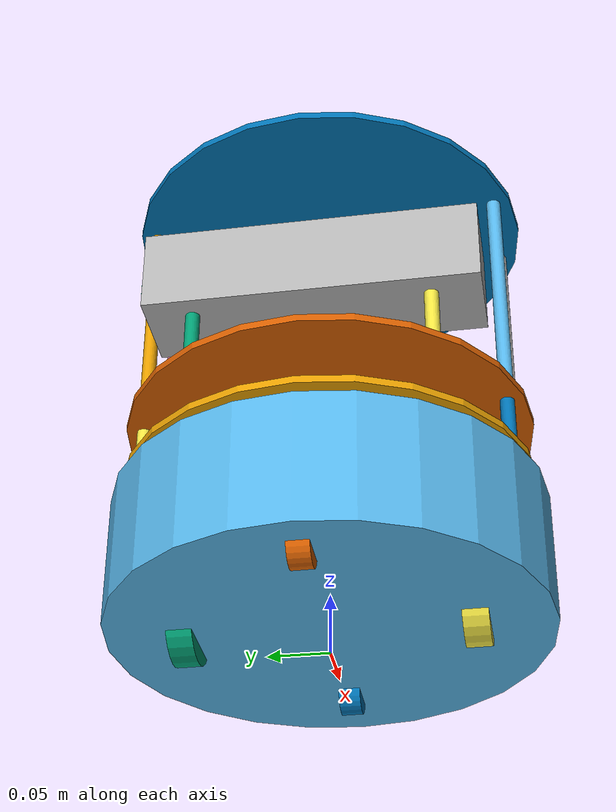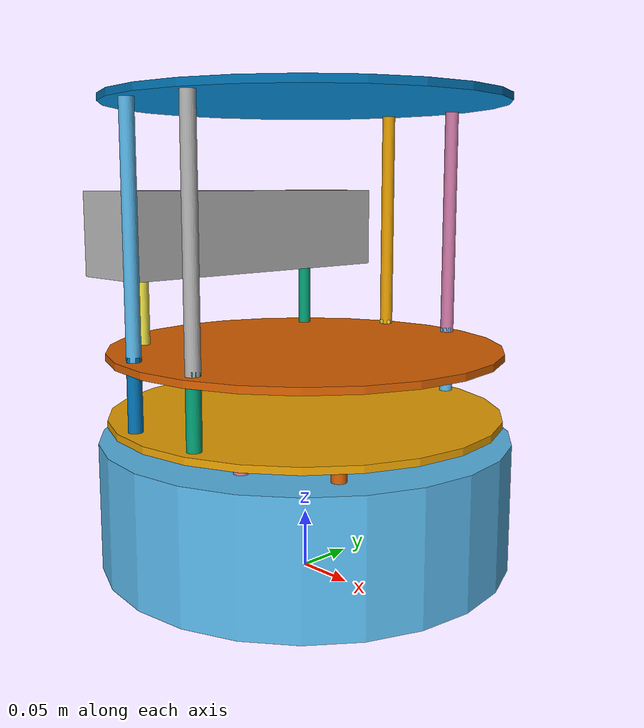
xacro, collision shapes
<?xml version='1.0' encoding='utf-8'?>\n
<!-- |    This document was autogenerated by xacro from /opt/ros/kinetic/share/turtlebot_description/robots/kobuki_hexagons_asus_xtion_pro.urdf.xacro | -->
<!-- |    EDITING THIS FILE BY HAND IS NOT RECOMMENDED                                 | -->
<!--
    - Base      : kobuki
    - Stacks    : hexagons
    - 3d Sensor : kinect
-->
<robot name="turtlebot" xmlns:xacro="http://ros.org/wiki/xacro">
  <!--
    These properties must be observed by any machine
    that wants to be defined as a turtlebot. Refer
    to the REP for more details.

    http://www.ros.org/reps/rep-0119.html
   -->
  <!--
    These properties must be observed by any machine
    that wants to be defined as a turtlebot. Refer
    to the REP for more details.

    http://www.ros.org/reps/rep-0119.html
   -->
  <link name="base_footprint" />
  <joint name="base_joint" type="fixed">
    <origin rpy="0 0 0" xyz="0 0 0.0102" />
    <parent link="base_footprint" />
    <child link="base_link" />
  </joint>
  <link name="base_link">
    <visual>
      <geometry>
        <!-- new mesh -->
        <mesh filename="package://unity-turtle/kobuki_description/meshes/main_body.dae" />
      </geometry>
      <origin rpy="0 0 0" xyz="0.001 0 0.05199" />
    </visual>
    <collision name="base">
      <geometry>
        <cylinder length="0.10938" radius="0.178" />
      </geometry>
      <origin rpy="0 0 0" xyz="0.0 0 0.05949" />
    </collision>
    <inertial>
      <!-- COM experimentally determined -->
      <origin xyz="0.01 0 0" />
      <mass value="2.4" />
      <!-- 2.4/2.6 kg for small/big battery pack -->
      <inertia ixx="0.019995" ixy="0.0" ixz="0.0" iyy="0.019995" iyz="0.0" izz="0.03675" />
    </inertial>
  </link>
  <joint name="wheel_left_joint" type="continuous">
    <parent link="base_link" />
    <child link="wheel_left_link" />
    <origin rpy="-1.57079632679 0 0" xyz="0.00 0.115 0.0250" />
    <axis xyz="0 0 1" />
  </joint>
  <link name="wheel_left_link">
    <visual>
      <geometry>
        <mesh filename="package://unity-turtle/kobuki_description/meshes/wheel.dae" />
      </geometry>
      <origin rpy="0 0 0" xyz="0 0 0" />
    </visual>
    <collision>
      <geometry>
        <cylinder length="0.0206" radius="0.0352" />
      </geometry>
      <origin rpy="0 0 0" xyz="0 0 0" />
    </collision>
    <inertial>
      <mass value="0.01" />
      <origin xyz="0 0 0" />
      <inertia ixx="0.001" ixy="0.0" ixz="0.0" iyy="0.001" iyz="0.0" izz="0.001" />
    </inertial>
  </link>
  <joint name="wheel_right_joint" type="continuous">
    <parent link="base_link" />
    <child link="wheel_right_link" />
    <origin rpy="-1.57079632679 0 0" xyz="0.00 -0.115 0.0250" />
    <axis xyz="0 0 1" />
  </joint>
  <link name="wheel_right_link">
    <visual>
      <geometry>
        <mesh filename="package://unity-turtle/kobuki_description/meshes/wheel.dae" />
      </geometry>
      <origin rpy="0 0 0" xyz="0 0 0" />
    </visual>
    <collision>
      <geometry>
        <cylinder length="0.0206" radius="0.0350" />
      </geometry>
      <origin rpy="0 0 0" xyz="0 0 0" />
    </collision>
    <inertial>
      <mass value="0.01" />
      <origin xyz="0 0 0" />
      <inertia ixx="0.001" ixy="0.0" ixz="0.0" iyy="0.001" iyz="0.0" izz="0.001" />
    </inertial>
  </link>
  <joint name="caster_front_joint" type="fixed">
    <parent link="base_link" />
    <child link="caster_front_link" />
    <origin rpy="-1.57079632679 0 0" xyz="0.115 0.0 0.007" />
  </joint>
  <link name="caster_front_link">
    <collision>
      <geometry>
        <cylinder length="0.0176" radius="0.017" />
      </geometry>
      <origin rpy="0 0 0" xyz="0 0 0" />
    </collision>
    <inertial>
      <mass value="0.01" />
      <origin xyz="0 0 0" />
      <inertia ixx="0.001" ixy="0.0" ixz="0.0" iyy="0.001" iyz="0.0" izz="0.001" />
    </inertial>
  </link>
  <joint name="caster_back_joint" type="fixed">
    <parent link="base_link" />
    <child link="caster_back_link" />
    <origin rpy="-1.57079632679 0 0" xyz="-0.135 0.0 0.009" />
  </joint>
  <link name="caster_back_link">
    <collision>
      <geometry>
        <cylinder length="0.0176" radius="0.017" />
      </geometry>
      <origin rpy="0 0 0" xyz="0 0 0" />
    </collision>
    <inertial>
      <mass value="0.01" />
      <origin xyz="0 0 0" />
      <inertia ixx="0.001" ixy="0.0" ixz="0.0" iyy="0.001" iyz="0.0" izz="0.001" />
    </inertial>
  </link>
  <!-- Kobuki's sensors -->
  <joint name="gyro_joint" type="fixed">
    <axis xyz="0 1 0" />
    <origin rpy="0 0 0" xyz="0.056 0.062 0.0202" />
    <parent link="base_link" />
    <child link="gyro_link" />
  </joint>
  <link name="gyro_link">
    <inertial>
      <mass value="0.001" />
      <origin rpy="0 0 0" xyz="0 0 0" />
      <inertia ixx="0.0001" ixy="0" ixz="0" iyy="0.000001" iyz="0" izz="0.0001" />
    </inertial>
  </link>
  <joint name="cliff_sensor_left_joint" type="fixed">
    <origin rpy="0 1.57079632679 0" xyz="0.08734 0.13601 0.0214" />
    <parent link="base_link" />
    <child link="cliff_sensor_left_link" />
  </joint>
  <link name="cliff_sensor_left_link">
    <inertial>
      <mass value="0.0001" />
      <origin xyz="0 0 0" />
      <inertia ixx="0.0001" ixy="0.0" ixz="0.0" iyy="0.0001" iyz="0.0" izz="0.0001" />
    </inertial>
  </link>
  <joint name="cliff_sensor_right_joint" type="fixed">
    <origin rpy="0 1.57079632679 0" xyz="0.085 -0.13601 0.0214" />
    <parent link="base_link" />
    <child link="cliff_sensor_right_link" />
  </joint>
  <link name="cliff_sensor_right_link">
    <inertial>
      <mass value="0.0001" />
      <origin xyz="0 0 0" />
      <inertia ixx="0.0001" ixy="0.0" ixz="0.0" iyy="0.0001" iyz="0.0" izz="0.0001" />
    </inertial>
  </link>
  <joint name="cliff_sensor_front_joint" type="fixed">
    <origin rpy="0 1.57079632679 0" xyz="0.156 0.00 0.0214" />
    <parent link="base_link" />
    <child link="cliff_sensor_front_link" />
  </joint>
  <link name="cliff_sensor_front_link">
    <inertial>
      <mass value="0.0001" />
      <origin xyz="0 0 0" />
      <inertia ixx="0.0001" ixy="0.0" ixz="0.0" iyy="0.0001" iyz="0.0" izz="0.0001" />
    </inertial>
  </link>
  <gazebo reference="wheel_left_link">
    <mu1>1.0</mu1>
    <mu2>1.0</mu2>
    <kp>1000000.0</kp>
    <kd>100.0</kd>
    <minDepth>0.001</minDepth>
    <maxVel>1.0</maxVel>
  </gazebo>
  <gazebo reference="wheel_right_link">
    <mu1>1.0</mu1>
    <mu2>1.0</mu2>
    <kp>1000000.0</kp>
    <kd>100.0</kd>
    <minDepth>0.001</minDepth>
    <maxVel>1.0</maxVel>
  </gazebo>
  <gazebo reference="caster_front_link">
    <mu1>0.0</mu1>
    <mu2>0.0</mu2>
    <kp>1000000.0</kp>
    <kd>100.0</kd>
    <minDepth>0.001</minDepth>
    <maxVel>1.0</maxVel>
  </gazebo>
  <gazebo reference="caster_back_link">
    <mu1>0.0</mu1>
    <mu2>0.0</mu2>
    <kp>1000000.0</kp>
    <kd>100.0</kd>
    <minDepth>0.001</minDepth>
    <maxVel>1.0</maxVel>
  </gazebo>
  <gazebo reference="base_link">
    <mu1>0.3</mu1>
    <mu2>0.3</mu2>
    <sensor name="bumpers" type="contact">
      <always_on>1</always_on>
      <update_rate>50.0</update_rate>
      <visualize>true</visualize>
      <contact>
        <collision>base_footprint_fixed_joint_lump__base_collision</collision>
      </contact>
    </sensor>
  </gazebo>
  <gazebo reference="cliff_sensor_left_link">
    <sensor name="cliff_sensor_left" type="ray">
      <always_on>true</always_on>
      <update_rate>50</update_rate>
      <visualize>true</visualize>
      <ray>
        <scan>
          <horizontal>
            <samples>50</samples>
            <resolution>1.0</resolution>
            <min_angle>-0.0436</min_angle>
            <!-- -2.5 degree -->
            <max_angle>0.0436</max_angle>
            <!-- 2.5 degree -->
          </horizontal>
          <!--            Can't use vertical rays until this bug is resolved: -->
          <!--            https://bitbucket.org/osrf/gazebo/issue/509/vertical-sensor-doesnt-works -->
        </scan>
        <range>
          <min>0.01</min>
          <max>0.15</max>
          <resolution>1.0</resolution>
        </range>
      </ray>
    </sensor>
  </gazebo>
  <gazebo reference="cliff_sensor_right_link">
    <sensor name="cliff_sensor_right" type="ray">
      <always_on>true</always_on>
      <update_rate>50</update_rate>
      <visualize>true</visualize>
      <ray>
        <scan>
          <horizontal>
            <samples>50</samples>
            <resolution>1.0</resolution>
            <min_angle>-0.0436</min_angle>
            <!-- -2.5 degree -->
            <max_angle>0.0436</max_angle>
            <!-- 2.5 degree -->
          </horizontal>
          <!--            Can't use vertical rays until this bug is resolved: -->
          <!--            https://bitbucket.org/osrf/gazebo/issue/509/vertical-sensor-doesnt-works -->
        </scan>
        <range>
          <min>0.01</min>
          <max>0.15</max>
          <resolution>1.0</resolution>
        </range>
      </ray>
    </sensor>
  </gazebo>
  <gazebo reference="cliff_sensor_front_link">
    <sensor name="cliff_sensor_front" type="ray">
      <always_on>true</always_on>
      <update_rate>50</update_rate>
      <visualize>true</visualize>
      <ray>
        <scan>
          <horizontal>
            <samples>50</samples>
            <resolution>1.0</resolution>
            <min_angle>-0.0436</min_angle>
            <!-- -2.5 degree -->
            <max_angle>0.0436</max_angle>
            <!-- 2.5 degree -->
          </horizontal>
          <!-- \t          Can't use vertical rays until this bug is resolved: -->
          <!--            https://bitbucket.org/osrf/gazebo/issue/509/vertical-sensor-doesnt-works -->
        </scan>
        <range>
          <min>0.01</min>
          <max>0.15</max>
          <resolution>1.0</resolution>
        </range>
      </ray>
    </sensor>
  </gazebo>
  <gazebo reference="gyro_link">
    <sensor name="imu" type="imu">
      <always_on>true</always_on>
      <update_rate>50</update_rate>
      <visualize>false</visualize>
      <imu>
        <noise>
          <type>gaussian</type>
          <rate>
            <mean>0.0</mean>
            <stddev>1.96e-06</stddev>
            <!-- 0.25 x 0.25 (deg/s) -->
            <bias_mean>0.0</bias_mean>
            <bias_stddev>0.0</bias_stddev>
          </rate>
          <accel>
            <!-- not used in the plugin and real robot, hence using tutorial values -->
            <mean>0.0</mean>
            <stddev>1.7e-2</stddev>
            <bias_mean>0.1</bias_mean>
            <bias_stddev>0.001</bias_stddev>
          </accel>
        </noise>
      </imu>
    </sensor>
  </gazebo>
  <gazebo>
    <plugin filename="libgazebo_ros_kobuki.so" name="kobuki_controller">
      <publish_tf>1</publish_tf>
      <left_wheel_joint_name>wheel_left_joint</left_wheel_joint_name>
      <right_wheel_joint_name>wheel_right_joint</right_wheel_joint_name>
      <wheel_separation>.230</wheel_separation>
      <wheel_diameter>0.070</wheel_diameter>
      <torque>1.0</torque>
      <velocity_command_timeout>0.6</velocity_command_timeout>
      <cliff_sensor_left_name>cliff_sensor_left</cliff_sensor_left_name>
      <cliff_sensor_center_name>cliff_sensor_front</cliff_sensor_center_name>
      <cliff_sensor_right_name>cliff_sensor_right</cliff_sensor_right_name>
      <cliff_detection_threshold>0.04</cliff_detection_threshold>
      <bumper_name>bumpers</bumper_name>
      <imu_name>imu</imu_name>
    </plugin>
  </gazebo>
  <joint name="pole_bottom_0_joint" type="fixed">
    <origin rpy="0 0 0" xyz="0.12 0.082 0.1028" />
    <parent link="base_link" />
    <child link="pole_bottom_0_link" />
  </joint>
  <link name="pole_bottom_0_link">
    <visual>
      <origin rpy="0 0 0" xyz="0 0 0" />
      <geometry>
        <mesh filename="package://unity-turtle/turtlebot_description/meshes/stacks/hexagons/pole_bottom.dae" />
      </geometry>
    </visual>
    <collision>
      <origin rpy="0 0 0" xyz="0 0 0" />
      <geometry>
        <cylinder length="0.0492" radius="0.006" />
      </geometry>
    </collision>
    <inertial>
      <mass value="0.008" />
      <origin rpy="0 0 0" xyz="0 0 0" />
      <inertia ixx="0.000001686" ixy="0.0" ixz="0.0" iyy="0.000001686" iyz="0.0" izz="0.000000144" />
    </inertial>
  </link>
  <joint name="pole_bottom_1_joint" type="fixed">
    <origin rpy="0 0 0" xyz="0.055 0.12 0.1028" />
    <parent link="base_link" />
    <child link="pole_bottom_1_link" />
  </joint>
  <link name="pole_bottom_1_link">
    <visual>
      <origin rpy="0 0 0" xyz="0 0 0" />
      <geometry>
        <mesh filename="package://unity-turtle/turtlebot_description/meshes/stacks/hexagons/pole_bottom.dae" />
      </geometry>
    </visual>
    <collision>
      <origin rpy="0 0 0" xyz="0 0 0" />
      <geometry>
        <cylinder length="0.0492" radius="0.006" />
      </geometry>
    </collision>
    <inertial>
      <mass value="0.008" />
      <origin rpy="0 0 0" xyz="0 0 0" />
      <inertia ixx="0.000001686" ixy="0.0" ixz="0.0" iyy="0.000001686" iyz="0.0" izz="0.000000144" />
    </inertial>
  </link>
  <joint name="pole_bottom_2_joint" type="fixed">
    <origin rpy="0 0 0" xyz="-0.055 0.12 0.1028" />
    <parent link="base_link" />
    <child link="pole_bottom_2_link" />
  </joint>
  <link name="pole_bottom_2_link">
    <visual>
      <origin rpy="0 0 0" xyz="0 0 0" />
      <geometry>
        <mesh filename="package://unity-turtle/turtlebot_description/meshes/stacks/hexagons/pole_bottom.dae" />
      </geometry>
    </visual>
    <collision>
      <origin rpy="0 0 0" xyz="0 0 0" />
      <geometry>
        <cylinder length="0.0492" radius="0.006" />
      </geometry>
    </collision>
    <inertial>
      <mass value="0.008" />
      <origin rpy="0 0 0" xyz="0 0 0" />
      <inertia ixx="0.000001686" ixy="0.0" ixz="0.0" iyy="0.000001686" iyz="0.0" izz="0.000000144" />
    </inertial>
  </link>
  <joint name="pole_bottom_3_joint" type="fixed">
    <origin rpy="0 0 0" xyz="0.12 -0.082 0.1028" />
    <parent link="base_link" />
    <child link="pole_bottom_3_link" />
  </joint>
  <link name="pole_bottom_3_link">
    <visual>
      <origin rpy="0 0 0" xyz="0 0 0" />
      <geometry>
        <mesh filename="package://unity-turtle/turtlebot_description/meshes/stacks/hexagons/pole_bottom.dae" />
      </geometry>
    </visual>
    <collision>
      <origin rpy="0 0 0" xyz="0 0 0" />
      <geometry>
        <cylinder length="0.0492" radius="0.006" />
      </geometry>
    </collision>
    <inertial>
      <mass value="0.008" />
      <origin rpy="0 0 0" xyz="0 0 0" />
      <inertia ixx="0.000001686" ixy="0.0" ixz="0.0" iyy="0.000001686" iyz="0.0" izz="0.000000144" />
    </inertial>
  </link>
  <joint name="pole_bottom_4_joint" type="fixed">
    <origin rpy="0 0 0" xyz="0.055 -0.12 0.1028" />
    <parent link="base_link" />
    <child link="pole_bottom_4_link" />
  </joint>
  <link name="pole_bottom_4_link">
    <visual>
      <origin rpy="0 0 0" xyz="0 0 0" />
      <geometry>
        <mesh filename="package://unity-turtle/turtlebot_description/meshes/stacks/hexagons/pole_bottom.dae" />
      </geometry>
    </visual>
    <collision>
      <origin rpy="0 0 0" xyz="0 0 0" />
      <geometry>
        <cylinder length="0.0492" radius="0.006" />
      </geometry>
    </collision>
    <inertial>
      <mass value="0.008" />
      <origin rpy="0 0 0" xyz="0 0 0" />
      <inertia ixx="0.000001686" ixy="0.0" ixz="0.0" iyy="0.000001686" iyz="0.0" izz="0.000000144" />
    </inertial>
  </link>
  <joint name="pole_bottom_5_joint" type="fixed">
    <origin rpy="0 0 0" xyz="-0.055 -0.12 0.1028" />
    <parent link="base_link" />
    <child link="pole_bottom_5_link" />
  </joint>
  <link name="pole_bottom_5_link">
    <visual>
      <origin rpy="0 0 0" xyz="0 0 0" />
      <geometry>
        <mesh filename="package://unity-turtle/turtlebot_description/meshes/stacks/hexagons/pole_bottom.dae" />
      </geometry>
    </visual>
    <collision>
      <origin rpy="0 0 0" xyz="0 0 0" />
      <geometry>
        <cylinder length="0.0492" radius="0.006" />
      </geometry>
    </collision>
    <inertial>
      <mass value="0.008" />
      <origin rpy="0 0 0" xyz="0 0 0" />
      <inertia ixx="0.000001686" ixy="0.0" ixz="0.0" iyy="0.000001686" iyz="0.0" izz="0.000000144" />
    </inertial>
  </link>
  <joint name="plate_bottom_joint" type="fixed">
    <origin rpy="0 0 0" xyz="0.02364 0.0 0.1306" />
    <parent link="base_link" />
    <child link="plate_bottom_link" />
  </joint>
  <link name="plate_bottom_link">
    <visual>
      <origin rpy="0 0 0" xyz="0 0 0" />
      <geometry>
        <mesh filename="package://unity-turtle/turtlebot_description/meshes/stacks/hexagons/plate_bottom.dae" />
      </geometry>
    </visual>
    <collision>
      <origin rpy="0 0 0" xyz="-0.02364 0 0" />
      <geometry>
        <cylinder length="0.006" radius="0.170" />
      </geometry>
    </collision>
    <inertial>
      <mass value="0.520" />
      <origin xyz="0 0 0" />
      <inertia ixx="0.003328" ixy="0.0" ixz="0.0" iyy="0.003328" iyz="0.0" izz="0.006656" />
    </inertial>
  </link>
  <joint name="pole_middle_0_joint" type="fixed">
    <origin rpy="0 0 0" xyz="0.0381 0.1505 0.164" />
    <parent link="base_link" />
    <child link="pole_middle_0_link" />
  </joint>
  <link name="pole_middle_0_link">
    <visual>
      <origin rpy="0 3.14159265359 0" xyz="0 0 0" />
      <geometry>
        <mesh filename="package://unity-turtle/turtlebot_description/meshes/stacks/hexagons/pole_middle.dae" />
      </geometry>
    </visual>
    <collision>
      <origin rpy="0 0 0" xyz="0 0 0" />
      <geometry>
        <cylinder length="0.0608" radius="0.006" />
      </geometry>
    </collision>
    <inertial>
      <mass value="0.012" />
      <origin xyz="0 0 0" />
      <inertia ixx="0.000003805" ixy="0.0" ixz="0.0" iyy="0.000003805" iyz="0.0" izz="0.000000216" />
    </inertial>
  </link>
  <joint name="pole_middle_1_joint" type="fixed">
    <origin rpy="0 0 0" xyz="0.0381 -0.1505 0.164" />
    <parent link="base_link" />
    <child link="pole_middle_1_link" />
  </joint>
  <link name="pole_middle_1_link">
    <visual>
      <origin rpy="0 3.14159265359 0" xyz="0 0 0" />
      <geometry>
        <mesh filename="package://unity-turtle/turtlebot_description/meshes/stacks/hexagons/pole_middle.dae" />
      </geometry>
    </visual>
    <collision>
      <origin rpy="0 0 0" xyz="0 0 0" />
      <geometry>
        <cylinder length="0.0608" radius="0.006" />
      </geometry>
    </collision>
    <inertial>
      <mass value="0.012" />
      <origin xyz="0 0 0" />
      <inertia ixx="0.000003805" ixy="0.0" ixz="0.0" iyy="0.000003805" iyz="0.0" izz="0.000000216" />
    </inertial>
  </link>
  <joint name="pole_middle_2_joint" type="fixed">
    <origin rpy="0 0 0" xyz="-0.0381 0.1505 0.164" />
    <parent link="base_link" />
    <child link="pole_middle_2_link" />
  </joint>
  <link name="pole_middle_2_link">
    <visual>
      <origin rpy="0 3.14159265359 0" xyz="0 0 0" />
      <geometry>
        <mesh filename="package://unity-turtle/turtlebot_description/meshes/stacks/hexagons/pole_middle.dae" />
      </geometry>
    </visual>
    <collision>
      <origin rpy="0 0 0" xyz="0 0 0" />
      <geometry>
        <cylinder length="0.0608" radius="0.006" />
      </geometry>
    </collision>
    <inertial>
      <mass value="0.012" />
      <origin xyz="0 0 0" />
      <inertia ixx="0.000003805" ixy="0.0" ixz="0.0" iyy="0.000003805" iyz="0.0" izz="0.000000216" />
    </inertial>
  </link>
  <joint name="pole_middle_3_joint" type="fixed">
    <origin rpy="0 0 0" xyz="-0.0381 -0.1505 0.164" />
    <parent link="base_link" />
    <child link="pole_middle_3_link" />
  </joint>
  <link name="pole_middle_3_link">
    <visual>
      <origin rpy="0 3.14159265359 0" xyz="0 0 0" />
      <geometry>
        <mesh filename="package://unity-turtle/turtlebot_description/meshes/stacks/hexagons/pole_middle.dae" />
      </geometry>
    </visual>
    <collision>
      <origin rpy="0 0 0" xyz="0 0 0" />
      <geometry>
        <cylinder length="0.0608" radius="0.006" />
      </geometry>
    </collision>
    <inertial>
      <mass value="0.012" />
      <origin xyz="0 0 0" />
      <inertia ixx="0.000003805" ixy="0.0" ixz="0.0" iyy="0.000003805" iyz="0.0" izz="0.000000216" />
    </inertial>
  </link>
  <joint name="plate_middle_joint" type="fixed">
    <origin rpy="0 0 0" xyz="-0.01364 0.0 0.1874" />
    <parent link="base_link" />
    <child link="plate_middle_link" />
  </joint>
  <link name="plate_middle_link">
    <visual>
      <origin rpy="0 0 0" xyz="0 0 0" />
      <geometry>
        <mesh filename="package://unity-turtle/turtlebot_description/meshes/stacks/hexagons/plate_middle.dae" />
      </geometry>
    </visual>
    <collision>
      <origin rpy="0 0 0" xyz="0.01364 0.0 0.0" />
      <geometry>
        <cylinder length="0.006" radius="0.170" />
      </geometry>
    </collision>
    <inertial>
      <mass value="0.520" />
      <origin xyz="0 0 0" />
      <inertia ixx="0.003328" ixy="0.0" ixz="0.0" iyy="0.003328" iyz="0.0" izz="0.006656" />
    </inertial>
  </link>
  <joint name="pole_top_0_joint" type="fixed">
    <origin rpy="0 0 0" xyz="0.0381 0.1505 0.292" />
    <parent link="base_link" />
    <child link="pole_top_0_link" />
  </joint>
  <link name="pole_top_0_link">
    <visual>
      <origin rpy="0 0 0" xyz=" 0 0 0" />
      <geometry>
        <mesh filename="package://unity-turtle/turtlebot_description/meshes/stacks/hexagons/pole_top.dae" />
      </geometry>
    </visual>
    <collision>
      <origin rpy="0 0 0" xyz="0 0 0" />
      <geometry>
        <cylinder length="0.2032" radius="0.006" />
      </geometry>
    </collision>
    <inertial>
      <mass value="0.060" />
      <origin xyz="0 0 0" />
      <inertia ixx="0.000206991" ixy="0.0" ixz="0.0" iyy="0.000206991" iyz="0.0" izz="0.000001080" />
    </inertial>
  </link>
  <joint name="pole_top_1_joint" type="fixed">
    <origin rpy="0 0 0" xyz="0.0381 -0.1505 0.292" />
    <parent link="base_link" />
    <child link="pole_top_1_link" />
  </joint>
  <link name="pole_top_1_link">
    <visual>
      <origin rpy="0 0 0" xyz=" 0 0 0" />
      <geometry>
        <mesh filename="package://unity-turtle/turtlebot_description/meshes/stacks/hexagons/pole_top.dae" />
      </geometry>
    </visual>
    <collision>
      <origin rpy="0 0 0" xyz="0 0 0" />
      <geometry>
        <cylinder length="0.2032" radius="0.006" />
      </geometry>
    </collision>
    <inertial>
      <mass value="0.060" />
      <origin xyz="0 0 0" />
      <inertia ixx="0.000206991" ixy="0.0" ixz="0.0" iyy="0.000206991" iyz="0.0" izz="0.000001080" />
    </inertial>
  </link>
  <joint name="pole_top_2_joint" type="fixed">
    <origin rpy="0 0 0" xyz="-0.0381 0.1505 0.292" />
    <parent link="base_link" />
    <child link="pole_top_2_link" />
  </joint>
  <link name="pole_top_2_link">
    <visual>
      <origin rpy="0 0 0" xyz=" 0 0 0" />
      <geometry>
        <mesh filename="package://unity-turtle/turtlebot_description/meshes/stacks/hexagons/pole_top.dae" />
      </geometry>
    </visual>
    <collision>
      <origin rpy="0 0 0" xyz="0 0 0" />
      <geometry>
        <cylinder length="0.2032" radius="0.006" />
      </geometry>
    </collision>
    <inertial>
      <mass value="0.060" />
      <origin xyz="0 0 0" />
      <inertia ixx="0.000206991" ixy="0.0" ixz="0.0" iyy="0.000206991" iyz="0.0" izz="0.000001080" />
    </inertial>
  </link>
  <joint name="pole_top_3_joint" type="fixed">
    <origin rpy="0 0 0" xyz="-0.0381 -0.1505 0.292" />
    <parent link="base_link" />
    <child link="pole_top_3_link" />
  </joint>
  <link name="pole_top_3_link">
    <visual>
      <origin rpy="0 0 0" xyz=" 0 0 0" />
      <geometry>
        <mesh filename="package://unity-turtle/turtlebot_description/meshes/stacks/hexagons/pole_top.dae" />
      </geometry>
    </visual>
    <collision>
      <origin rpy="0 0 0" xyz="0 0 0" />
      <geometry>
        <cylinder length="0.2032" radius="0.006" />
      </geometry>
    </collision>
    <inertial>
      <mass value="0.060" />
      <origin xyz="0 0 0" />
      <inertia ixx="0.000206991" ixy="0.0" ixz="0.0" iyy="0.000206991" iyz="0.0" izz="0.000001080" />
    </inertial>
  </link>
  <joint name="pole_kinect_0_joint" type="fixed">
    <origin rpy="0 0 0" xyz="-0.1024 0.098 0.2372" />
    <parent link="base_link" />
    <child link="pole_kinect_0_link" />
  </joint>
  <link name="pole_kinect_0_link">
    <visual>
      <origin rpy="0 0 0" xyz="0 0 -0.01" />
      <geometry>
        <mesh filename="package://unity-turtle/turtlebot_description/meshes/sensors/sensor_pole.dae" />
      </geometry>
    </visual>
    <collision>
      <origin rpy="0 0 0" xyz="0 0 0" />
      <geometry>
        <cylinder length="0.0936" radius="0.006" />
      </geometry>
    </collision>
    <inertial>
      <mass value="0.020" />
      <origin xyz="0 0 0" />
      <inertia ixx="0.000014782" ixy="0.0" ixz="0.0" iyy="0.000014782" iyz="0.0" izz="0.000000360" />
    </inertial>
  </link>
  <joint name="pole_kinect_1_joint" type="fixed">
    <origin rpy="0 0 0" xyz="-0.1024 -0.098 0.2372" />
    <parent link="base_link" />
    <child link="pole_kinect_1_link" />
  </joint>
  <link name="pole_kinect_1_link">
    <visual>
      <origin rpy="0 0 0" xyz="0 0 -0.01" />
      <geometry>
        <mesh filename="package://unity-turtle/turtlebot_description/meshes/sensors/sensor_pole.dae" />
      </geometry>
    </visual>
    <collision>
      <origin rpy="0 0 0" xyz="0 0 0" />
      <geometry>
        <cylinder length="0.0936" radius="0.006" />
      </geometry>
    </collision>
    <inertial>
      <mass value="0.020" />
      <origin xyz="0 0 0" />
      <inertia ixx="0.000014782" ixy="0.0" ixz="0.0" iyy="0.000014782" iyz="0.0" izz="0.000000360" />
    </inertial>
  </link>
  <joint name="plate_top_joint" type="fixed">
    <origin rpy="0 0 0" xyz="-0.01364 0.0  0.3966" />
    <parent link="base_link" />
    <child link="plate_top_link" />
  </joint>
  <link name="plate_top_link">
    <visual>
      <origin rpy="0 0 0" xyz="0 0 0" />
      <geometry>
        <mesh filename="package://unity-turtle/turtlebot_description/meshes/stacks/hexagons/plate_top.dae" />
      </geometry>
    </visual>
    <collision>
      <origin rpy="0 0 0" xyz="0.01364 0 0" />
      <geometry>
        <cylinder length="0.006" radius="0.170" />
      </geometry>
    </collision>
    <inertial>
      <mass value="0.520" />
      <origin xyz="0 0 0" />
      <inertia ixx="0.003328" ixy="0.0" ixz="0.0" iyy="0.003328" iyz="0.0" izz="0.006656" />
    </inertial>
  </link>
  <joint name="camera_rgb_joint" type="fixed">
    <origin rpy="0 0 0" xyz="-0.087 0.0205 0.287" />
    <parent link="base_link" />
    <child link="camera_rgb_frame" />
  </joint>
  <link name="camera_rgb_frame" />
  <joint name="camera_rgb_optical_joint" type="fixed">
    <origin rpy="-1.57079632679 0 -1.57079632679" xyz="0 0 0" />
    <parent link="camera_rgb_frame" />
    <child link="camera_rgb_optical_frame" />
  </joint>
  <link name="camera_rgb_optical_frame" />
  <joint name="camera_joint" type="fixed">
    <origin rpy="0 0 0" xyz="0 -0.022 0" />
    <parent link="camera_rgb_frame" />
    <child link="camera_link" />
  </joint>
  <link name="camera_link">
    <visual>
      <origin rpy="0 0 0" xyz="-0.015 0.0035 0.004" />
      <geometry>
        <mesh filename="package://unity-turtle/turtlebot_description/meshes/sensors/xtion_pro_camera.dae" />
      </geometry>
    </visual>
    <collision>
      <origin rpy="0 0 0" xyz="0.0 0.0 0.0" />
      <geometry>
        <box size="0.0730 0.2760 0.0720" />
      </geometry>
    </collision>
    <inertial>
      <mass value="0.170" />
      <origin xyz="0 0 0" />
      <inertia ixx="0.001152600" ixy="0.0" ixz="0.0" iyy="0.000148934" iyz="0.0" izz="0.001154654" />
    </inertial>
  </link>
  <joint name="camera_depth_joint" type="fixed">
    <origin rpy="0 0 0" xyz="0 0.027 0" />
    <parent link="camera_rgb_frame" />
    <child link="camera_depth_frame" />
  </joint>
  <link name="camera_depth_frame" />
  <joint name="camera_depth_optical_joint" type="fixed">
    <origin rpy="-1.57079632679 0 -1.57079632679" xyz="0 0 0" />
    <parent link="camera_depth_frame" />
    <child link="camera_depth_optical_frame" />
  </joint>
  <link name="camera_depth_optical_frame" />
  <gazebo reference="camera_link">
    <sensor name="camera" type="depth">
      <always_on>true</always_on>
      <update_rate>20.0</update_rate>
      <camera>
        <horizontal_fov>1.0471975512</horizontal_fov>
        <image>
          <format>B8G8R8</format>
          <width>640</width>
          <height>480</height>
        </image>
        <clip>
          <near>0.05</near>
          <far>8.0</far>
        </clip>
      </camera>
      <plugin filename="libgazebo_ros_openni_kinect.so" name="kinect_camera_controller">
        <cameraName>camera</cameraName>
        <alwaysOn>true</alwaysOn>
        <updateRate>10</updateRate>
        <imageTopicName>rgb/image_raw</imageTopicName>
        <depthImageTopicName>depth/image_raw</depthImageTopicName>
        <pointCloudTopicName>depth/points</pointCloudTopicName>
        <cameraInfoTopicName>rgb/camera_info</cameraInfoTopicName>
        <depthImageCameraInfoTopicName>depth/camera_info</depthImageCameraInfoTopicName>
        <frameName>camera_depth_optical_frame</frameName>
        <baseline>0.1</baseline>
        <distortion_k1>0.0</distortion_k1>
        <distortion_k2>0.0</distortion_k2>
        <distortion_k3>0.0</distortion_k3>
        <distortion_t1>0.0</distortion_t1>
        <distortion_t2>0.0</distortion_t2>
        <pointCloudCutoff>0.4</pointCloudCutoff>
      </plugin>
    </sensor>
  </gazebo>
  <!-- Asus mount -->
  <joint name="mount_asus_xtion_pro_joint" type="fixed">
    <origin rpy="0 0 0" xyz="-0.1024 0.0 0.272" />
    <parent link="base_link" />
    <child link="mount_asus_xtion_pro_link" />
  </joint>
  <link name="mount_asus_xtion_pro_link">
    <visual>
      <origin rpy="-1.57079632679 0 0" xyz="0 0 0" />
      <geometry>
        <mesh filename="package://unity-turtle/turtlebot_description/meshes/sensors/xtion_pro_stack.dae" />
      </geometry>
    </visual>
    <collision>
      <origin rpy="0 0 0" xyz="0.0 0.0 0.0" />
      <geometry>
        <box size="0.0330 0.2760 0.0120" />
      </geometry>
    </collision>
    <inertial>
      <mass value="0.170" />
      <origin xyz="0 0 0" />
      <inertia ixx="0.001152600" ixy="0.0" ixz="0.0" iyy="0.000148934" iyz="0.0" izz="0.001154654" />
    </inertial>
  </link>
</robot>
